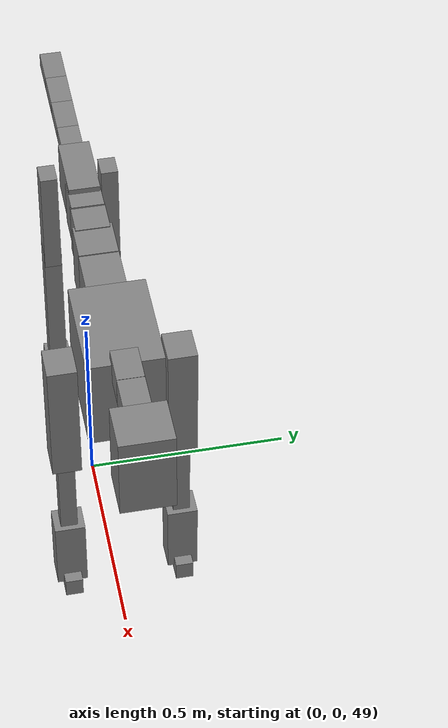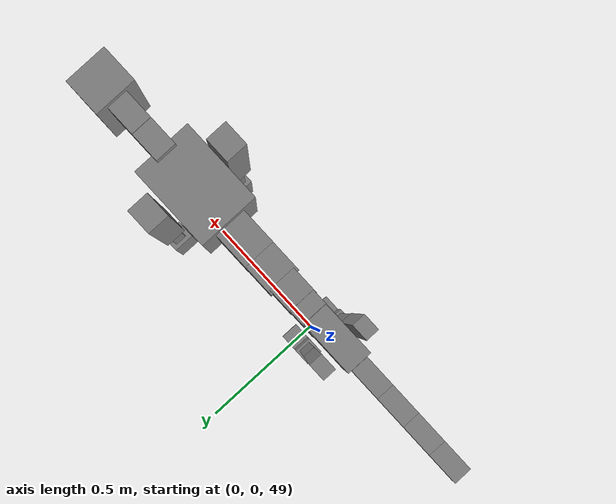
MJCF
<mujoco model="dog">

    <default>
        <joint armature="0.02" stiffness="1" damping="0.2" limited="true"/>
        <geom condim="3" friction="1 0.05 0.05" margin="0.01"/>
        <motor ctrllimited="true" ctrlrange="-1.0 1.0" forcelimited="true" gear="50"/>
    </default>

    <compiler inertiafromgeom="true" angle="radian"/>

    <option timestep="0.016" iterations="50" tolerance="1e-10" solver="Newton" jacobian="dense" cone="pyramidal"/>

    <size nconmax="20000" njmax="60000" nstack="5000000"/>
    <visual>
        <map force="0.1" zfar="30"/>
        <rgba haze="0.15 0.25 0.35 1"/>
        <quality shadowsize="2048"/>
        <global offwidth="800" offheight="800"/>
    </visual>

    <asset>
        <texture type="skybox" builtin="gradient" rgb1="0.3 0.5 0.7" rgb2="0 0 0" width="512" height="512"/>
        <texture name="texplane" type="2d" builtin="checker" rgb1=".2 .3 .4" rgb2=".1 0.15 0.2" width="512" height="512"
                 mark="cross" markrgb=".8 .8 .8"/>
        <texture name="texgeom" type="cube" builtin="flat" mark="cross" width="127" height="1278" rgb1="0.8 0.6 0.4"
                 rgb2="0.8 0.6 0.4" markrgb="1 1 1" random="0.01"/>

        <material name="matplane" reflectance="0.3" texture="texplane" texrepeat="1 1" texuniform="true"/>
        <material name="matgeom" texture="texgeom" texuniform="true" rgba="0.8 0.6 .4 1"/>
    </asset>

    <worldbody>
        <geom name="floor" pos="0 0 0" size="0 0 .25" type="plane" material="matplane" condim="3"/>

        <light directional="false" diffuse=".2 .2 .2" specular="0 0 0" pos="0 0 5" dir="0 0 -1" castshadow="false"/>
        <light mode="targetbodycom" target="torso" directional="false" diffuse=".8 .8 .8" specular="0.3 0.3 0.3"
               pos="0 0 4.0" dir="0 0 -1"/>

        <body name="root" pos="0 0 50">
            <freejoint name="root_1"/>
            <geom type="box" pos="0 0 -0.02" size="0.0774  0.0358  0.063" density="2030"/>

            <body name="spine1" pos="0.054 0 0">
                <joint name="spine1_y" axis="0 1 0" range="0 0.7" limited="true"/>
                <geom type="box" pos="0.02375 0 -0.03" size="0.04375  0.0375  0.05985" density="2030"/>

                <body name="spine2" pos="0.0612 0 0">
                    <joint name="spine2_y" axis="0 1 0" range="-0.15 0.15" limited="true"/>
                    <geom type="box" pos="0.03555  0  -0.04" size="0.04055  0.039  0.06615" density="2030"/>

                    <body name="spine3" pos="0.0730 0 0">
                        <joint name="spine3_y" axis="0 1 0" range="-0.15 0.15" limited="true"/>
                        <geom type="box" pos="0.03555  0  -0.057" size="0.04555  0.0445  0.081" density="2030"/>

                        <body name="spine4" pos="0.0780 0 0">
                            <joint name="spine4_y" axis="0 1 0" range="-0.15 0.15" limited="true"/>
                            <geom type="box" pos="0.05265  0  -0.07" size="0.05265  0.045  0.09135" density="2030"/>

                            <body name="torso" pos="0.1082 0 0">
                                <joint name="torso_y" axis="0 1 0" range="-0.15 0.15" limited="true"/>
                                <geom type="box" pos="0.11925  0  -0.085" size="0.11925  0.085  0.11745"
                                      density="2030"/>

                                <body name="neck1" pos="0.2160  0   0.0180">
                                    <joint name="neck1_y" axis="0 1 0" range="-1.2  -1" limited="true"/>
                                    <geom type="box" pos="0.0423  0  0" size="0.0423  0.03  0.036" density="2325"/>

                                    <body name="neck2" pos="0.0853  0  0">
                                        <joint name="neck2_y" axis="0 1 0" range="0.1  0" limited="true"/>
                                        <geom type="box" pos="0.0423  0  0" size="0.0423  0.03  0.036" density="2325"/>

                                        <body name="head" pos="0.0853  0  0">
                                            <joint name="head_y" axis="0 1 0" range="-0.3  -0.2" limited="true"/>
                                            <geom type="box" pos="0.0531  0  -0.055" size="0.0531  0.06  0.1044"
                                                  density="4030"/>

                                        </body>
                                    </body>
                                </body>

                                <body name="front_shoulder" pos="0.156  0   -0.0480">
                                    <joint name="front_shoulder_y" axis="0 1 0" range="-1 1.5" limited="true"/>
                                    <geom type="box" pos="0 0.13 -0.1322" size="0.0384  0.0328  0.1588" density="1158"/>
                                    <geom type="box" pos="0 -0.13 -0.1322" size="0.0384  0.0328  0.1588"
                                          density="1158"/>

                                    <body name="front_elbow" pos="0  0  -0.2644">
                                        <joint name="front_elbow_y" axis="0 1 0" range="-2 0" limited="true"/>
                                        <geom type="box" pos="0 0.13 -0.1243" size="0.0189  0.0193  0.1243"
                                              density="1081"/>
                                        <geom type="box" pos="0 -0.13 -0.1243" size="0.0189  0.0193  0.1243"
                                              density="1081"/>

                                        <body name="front_wrist" pos="0  0  -0.2485">
                                            <joint name="front_wrist_y" axis="0 1 0" range="-0.2 0" limited="true"/>
                                            <geom type="box" pos="0 0.13 -0.0797" size="0.0313  0.0348  0.0928"
                                                  density="1664"/>
                                            <geom type="box" pos="0 -0.13 -0.0797" size="0.0313  0.0348  0.0928"
                                                  density="1664"/>

                                            <body name="front_finger_end" pos="0  0  -0.1593">
                                                <joint name="front_finger_y" axis="0 1 0" range="-0.4 1"
                                                       limited="true"/>
                                                <geom type="box" pos="0.0202  0.13  -0.0092"
                                                      size="0.0370  0.0202  0.0242" density="1515"/>
                                                <geom type="box" pos="0.0202  -0.13  -0.0092"
                                                      size="0.0370  0.0202  0.0242" density="1515"/>

                                            </body>

                                        </body>
                                    </body>
                                </body>

                            </body>
                        </body>
                    </body>
                </body>
            </body>

            <body name="back_hip" pos="-0.03 0 -0.018">
                <joint name="back_hip_y" axis="0 1 0" range="-1.5 0.3" limited="true"/>
                <geom type="box" pos="0 0.07 -0.1137" size="0.0252  0.0197  0.1365" density="1154"/>
                <geom type="box" pos="0 -0.07 -0.1137" size="0.0252  0.0197  0.1365" density="1154"/>

                <body name="back_knee" pos="0  0  -0.2273">
                    <joint name="back_knee_y" axis="0 1 0" range="0 2.8" limited="true"/>
                    <geom type="box" pos="0 0.07 -0.1739" size="0.0209  0.0206  0.1895" density="1227"/>
                    <geom type="box" pos="0 -0.07 -0.1739" size="0.0209  0.0206  0.1895" density="1227"/>

                    <body name="back_ankle" pos="0  0  -0.3478">
                        <joint name="back_ankle_y" axis="0 1 0" range="-2.2 0" limited="true"/>
                        <geom type="box" pos="0 0.07 -0.0535" size="0.0295  0.0295  0.0648" density="1284"/>
                        <geom type="box" pos="0 -0.07 -0.0535" size="0.0295  0.0295  0.0648" density="1284"/>

                        <body name="back_toe_end" pos="0  0  -0.1071">
                            <joint name="back_toe_y" axis="0 1 0" range="-0.4 1" limited="true"/>
                            <geom type="box" pos="0.0308  0.07  0.0015" size="0.0564  0.0308  0.0135" density="1515"/>
                            <geom type="box" pos="0.0308  -0.07  0.0015" size="0.0564  0.0308  0.0135" density="1515"/>

                        </body>
                    </body>
                </body>
            </body>

            <body name="tail1" pos="-0.074 0 -0.006">
                <joint name="tail1_y" axis="0 1 0" range="-0.2 0.2" limited="true"/>
                <geom type="box" pos="-0.0536  0  0" size="0.045  0.025  0.0175" density="1587"/>

                <body name="tail2" pos="-0.09 0 0">
                    <joint name="tail2_y" axis="0 1 0" range="-0.2 0.2" limited="true"/>
                    <geom type="box" pos="-0.0536  0  0" size="0.045  0.025  0.0175" density="1587"/>

                    <body name="tail3" pos="-0.09 0 0">
                        <joint name="tail3_y" axis="0 1 0" range="-0.2 0.2" limited="true"/>
                        <geom type="box" pos="-0.0536  0  0" size="0.045  0.025  0.0175" density="1587"/>

                        <body name="tail4" pos="-0.09 0 0">
                            <joint name="tail4_y" axis="0 1 0" range="-0.2 0.2" limited="true"/>
                            <geom type="box" pos="-0.0536  0  0" size="0.045  0.025  0.0175" density="1587"/>

                        </body>
                    </body>
                </body>
            </body>
        </body>
    </worldbody>

    <actuator>
        <motor joint="spine1_y" forcerange="-150 150     "/>
        <motor joint="spine2_y" forcerange="-150 150     "/>
        <motor joint="spine3_y" forcerange="-150 150     "/>
        <motor joint="spine4_y" forcerange="-150 150     "/>
        <motor joint="torso_y" forcerange="-150 150     "/>
        <motor joint="neck1_y" forcerange="-100 100       "/>
        <motor joint="neck2_y" forcerange="-100 100       "/>
        <motor joint="head_y" forcerange="-150 150       "/>
        <motor joint="front_shoulder_y" forcerange="-180.61 138.31"/>
        <motor joint="front_elbow_y" forcerange="-129.59 110.76"/>
        <motor joint="front_wrist_y" forcerange="-149.47 128.59"/>
        <motor joint="front_finger_y" forcerange="-26.54 40.98"/>
        <motor joint="back_hip_y" forcerange="-211.51 251.63"/>
        <motor joint="back_knee_y" forcerange="-285.23 213.71"/>
        <motor joint="back_angle_y" forcerange="-191.37 180.27"/>
        <motor joint="back_toe_y" forcerange="-30.91 135.13"/>
        <motor joint="tail1_y" forcerange="-50 50     "/>
        <motor joint="tail2_y" forcerange="-50 50     "/>
        <motor joint="tail3_y" forcerange="-50 50     "/>
        <motor joint="tail4_y" forcerange="-50 50     "/>
    </actuator>
</mujoco>
